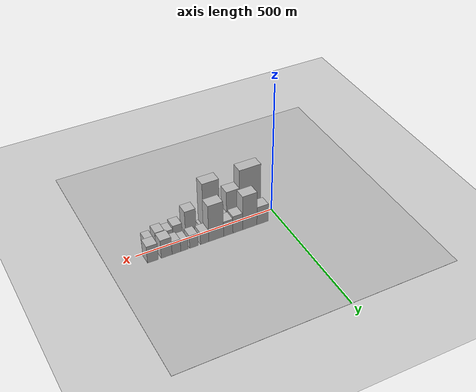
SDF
<?xml version="1.0" encoding="utf-8"?>

<sdf version="1.6">

   <world name="default">

      <gui fullscreen="0">

         <camera name="user_camera">

            <pose>-15 0 4.57585 0 0 0</pose>

            <view_controller>orbit</view_controller>

         </camera>

      </gui>

      <scene>

         <sky>

           <clouds>

             <speed>12</speed>

           </clouds>

         </sky>

         <ambient>0.4 0.4 0.4 1</ambient>

         <background>0.7 0.7 0.7 1</background>

         <shadows>1</shadows>

      </scene>

      <gravity>0 0 -9.8066</gravity>

      <magnetic_field>6e-06 2.3e-05 -4.2e-05</magnetic_field>

      <physics default="0" name="default_physics" type="ode">

         <ode>

            <solver>

               <type>quick</type>

               <iters>10</iters>

               <sor>1.0</sor>

               <use_dynamic_moi_rescaling>0</use_dynamic_moi_rescaling>

            </solver>

            <constraints>

               <cfm>0</cfm>

               <erp>0.2</erp>

               <contact_max_correcting_vel>100</contact_max_correcting_vel>

               <contact_surface_layer>0.001</contact_surface_layer>

            </constraints>

         </ode>

         <max_step_size>0.004</max_step_size>

         <real_time_factor>1</real_time_factor>

         <real_time_update_rate>250</real_time_update_rate>

      </physics>

      <light name="sun" type="directional">

         <cast_shadows>1</cast_shadows>

         <pose>0 0 10 0 0 0</pose>

         <diffuse>0.8 0.8 0.8 1</diffuse>

         <specular>0.2 0.2 0.2 1</specular>

         <attenuation>

            <range>1000</range>

            <constant>0.9</constant>

            <linear>0.01</linear>

            <quadratic>0.001</quadratic>

         </attenuation>

         <direction>-0.5 0.1 -0.9</direction>

      </light>

      <include>

         <name>ground_plane_1</name>

         <uri>model://HANNAS_ground_plane</uri>

         <pose>0 0 0  0 0 0</pose>

      </include>

      <include>

         <name>ground_plane_2</name>

         <uri>model://HANNAS_ground_plane</uri>

         <pose>100 0 0  0 0 0</pose>

      </include>

      <model name="building_1">

         <static>1</static>

         <pose frame="">61.5399 27.5000 0 0.000000 0.000000 1.570796</pose>

         <link name="link">

            <pose frame="">0 0 37.50 0 0 0</pose>

            <collision name="collision">

               <geometry>

                  <box>

                     <size>40.0000 43.0799 75.0000</size>

                  </box>

               </geometry>

               <max_contacts>10</max_contacts>

               <surface>

                  <contact>

                     <ode/>

                  </contact>

                  <bounce/>

                  <friction>

                     <torsional>

                        <ode/>

                     </torsional>

                     <ode/>

                  </friction>

               </surface>

            </collision>

            <visual name="visual">

               <cast_shadows>0</cast_shadows>

               <geometry>

                  <box>

                     <size>40.0000 43.0799 75.0000</size>

                  </box>

               </geometry>

               <material>

                  <script>

                     <uri>model://HANNAS_wall/materials/scripts</uri>

                     <uri>model://HANNAS_wall/materials/textures</uri>

                     <name>vrc/HANNAS_wall</name>

                  </script>

               </material>

            </visual>

            <self_collide>0</self_collide>

            <enable_wind>0</enable_wind>

            <kinematic>0</kinematic>

         </link>

      </model>

      <model name="building_2">

         <static>1</static>

         <pose frame="">110.0550 27.5000 0 0.000000 0.000000 1.570796</pose>

         <link name="link">

            <pose frame="">0 0 70.50 0 0 0</pose>

            <collision name="collision">

               <geometry>

                  <box>

                     <size>40.0000 53.9503 141.0000</size>

                  </box>

               </geometry>

               <max_contacts>10</max_contacts>

               <surface>

                  <contact>

                     <ode/>

                  </contact>

                  <bounce/>

                  <friction>

                     <torsional>

                        <ode/>

                     </torsional>

                     <ode/>

                  </friction>

               </surface>

            </collision>

            <visual name="visual">

               <cast_shadows>0</cast_shadows>

               <geometry>

                  <box>

                     <size>40.0000 53.9503 141.0000</size>

                  </box>

               </geometry>

               <material>

                  <script>

                     <uri>model://HANNAS_wall/materials/scripts</uri>

                     <uri>model://HANNAS_wall/materials/textures</uri>

                     <name>vrc/HANNAS_wall</name>

                  </script>

               </material>

            </visual>

            <self_collide>0</self_collide>

            <enable_wind>0</enable_wind>

            <kinematic>0</kinematic>

         </link>

      </model>

      <model name="building_3">

         <static>1</static>

         <pose frame="">155.0801 27.5000 0 0.000000 0.000000 1.570796</pose>

         <link name="link">

            <pose frame="">0 0 36.00 0 0 0</pose>

            <collision name="collision">

               <geometry>

                  <box>

                     <size>40.0000 36.0998 72.0000</size>

                  </box>

               </geometry>

               <max_contacts>10</max_contacts>

               <surface>

                  <contact>

                     <ode/>

                  </contact>

                  <bounce/>

                  <friction>

                     <torsional>

                        <ode/>

                     </torsional>

                     <ode/>

                  </friction>

               </surface>

            </collision>

            <visual name="visual">

               <cast_shadows>0</cast_shadows>

               <geometry>

                  <box>

                     <size>40.0000 36.0998 72.0000</size>

                  </box>

               </geometry>

               <material>

                  <script>

                     <uri>model://HANNAS_wall/materials/scripts</uri>

                     <uri>model://HANNAS_wall/materials/textures</uri>

                     <name>vrc/HANNAS_wall</name>

                  </script>

               </material>

            </visual>

            <self_collide>0</self_collide>

            <enable_wind>0</enable_wind>

            <kinematic>0</kinematic>

         </link>

      </model>

      <model name="building_4">

         <static>1</static>

         <pose frame="">190.4187 27.5000 0 0.000000 0.000000 1.570796</pose>

         <link name="link">

            <pose frame="">0 0 31.50 0 0 0</pose>

            <collision name="collision">

               <geometry>

                  <box>

                     <size>40.0000 34.5774 63.0000</size>

                  </box>

               </geometry>

               <max_contacts>10</max_contacts>

               <surface>

                  <contact>

                     <ode/>

                  </contact>

                  <bounce/>

                  <friction>

                     <torsional>

                        <ode/>

                     </torsional>

                     <ode/>

                  </friction>

               </surface>

            </collision>

            <visual name="visual">

               <cast_shadows>0</cast_shadows>

               <geometry>

                  <box>

                     <size>40.0000 34.5774 63.0000</size>

                  </box>

               </geometry>

               <material>

                  <script>

                     <uri>model://HANNAS_wall/materials/scripts</uri>

                     <uri>model://HANNAS_wall/materials/textures</uri>

                     <name>vrc/HANNAS_wall</name>

                  </script>

               </material>

            </visual>

            <self_collide>0</self_collide>

            <enable_wind>0</enable_wind>

            <kinematic>0</kinematic>

         </link>

      </model>

      <model name="building_5">

         <static>1</static>

         <pose frame="">234.9427 27.5000 0 0.000000 0.000000 1.570796</pose>

         <link name="link">

            <pose frame="">0 0 75.00 0 0 0</pose>

            <collision name="collision">

               <geometry>

                  <box>

                     <size>40.0000 54.4706 150.0000</size>

                  </box>

               </geometry>

               <max_contacts>10</max_contacts>

               <surface>

                  <contact>

                     <ode/>

                  </contact>

                  <bounce/>

                  <friction>

                     <torsional>

                        <ode/>

                     </torsional>

                     <ode/>

                  </friction>

               </surface>

            </collision>

            <visual name="visual">

               <cast_shadows>0</cast_shadows>

               <geometry>

                  <box>

                     <size>40.0000 54.4706 150.0000</size>

                  </box>

               </geometry>

               <material>

                  <script>

                     <uri>model://HANNAS_wall/materials/scripts</uri>

                     <uri>model://HANNAS_wall/materials/textures</uri>

                     <name>vrc/HANNAS_wall</name>

                  </script>

               </material>

            </visual>

            <self_collide>0</self_collide>

            <enable_wind>0</enable_wind>

            <kinematic>0</kinematic>

         </link>

      </model>

      <model name="building_6">

         <static>1</static>

         <pose frame="">277.0516 27.5000 0 0.000000 0.000000 1.570796</pose>

         <link name="link">

            <pose frame="">0 0 25.50 0 0 0</pose>

            <collision name="collision">

               <geometry>

                  <box>

                     <size>40.0000 29.7472 51.0000</size>

                  </box>

               </geometry>

               <max_contacts>10</max_contacts>

               <surface>

                  <contact>

                     <ode/>

                  </contact>

                  <bounce/>

                  <friction>

                     <torsional>

                        <ode/>

                     </torsional>

                     <ode/>

                  </friction>

               </surface>

            </collision>

            <visual name="visual">

               <cast_shadows>0</cast_shadows>

               <geometry>

                  <box>

                     <size>40.0000 29.7472 51.0000</size>

                  </box>

               </geometry>

               <material>

                  <script>

                     <uri>model://HANNAS_wall/materials/scripts</uri>

                     <uri>model://HANNAS_wall/materials/textures</uri>

                     <name>vrc/HANNAS_wall</name>

                  </script>

               </material>

            </visual>

            <self_collide>0</self_collide>

            <enable_wind>0</enable_wind>

            <kinematic>0</kinematic>

         </link>

      </model>

      <model name="building_7">

         <static>1</static>

         <pose frame="">315.9096 27.5000 0 0.000000 0.000000 1.570796</pose>

         <link name="link">

            <pose frame="">0 0 27.00 0 0 0</pose>

            <collision name="collision">

               <geometry>

                  <box>

                     <size>40.0000 29.9689 54.0000</size>

                  </box>

               </geometry>

               <max_contacts>10</max_contacts>

               <surface>

                  <contact>

                     <ode/>

                  </contact>

                  <bounce/>

                  <friction>

                     <torsional>

                        <ode/>

                     </torsional>

                     <ode/>

                  </friction>

               </surface>

            </collision>

            <visual name="visual">

               <cast_shadows>0</cast_shadows>

               <geometry>

                  <box>

                     <size>40.0000 29.9689 54.0000</size>

                  </box>

               </geometry>

               <material>

                  <script>

                     <uri>model://HANNAS_wall/materials/scripts</uri>

                     <uri>model://HANNAS_wall/materials/textures</uri>

                     <name>vrc/HANNAS_wall</name>

                  </script>

               </material>

            </visual>

            <self_collide>0</self_collide>

            <enable_wind>0</enable_wind>

            <kinematic>0</kinematic>

         </link>

      </model>

      <model name="building_8">

         <static>1</static>

         <pose frame="">349.7772 27.5000 0 0.000000 0.000000 1.570796</pose>

         <link name="link">

            <pose frame="">0 0 24.00 0 0 0</pose>

            <collision name="collision">

               <geometry>

                  <box>

                     <size>40.0000 25.7662 48.0000</size>

                  </box>

               </geometry>

               <max_contacts>10</max_contacts>

               <surface>

                  <contact>

                     <ode/>

                  </contact>

                  <bounce/>

                  <friction>

                     <torsional>

                        <ode/>

                     </torsional>

                     <ode/>

                  </friction>

               </surface>

            </collision>

            <visual name="visual">

               <cast_shadows>0</cast_shadows>

               <geometry>

                  <box>

                     <size>40.0000 25.7662 48.0000</size>

                  </box>

               </geometry>

               <material>

                  <script>

                     <uri>model://HANNAS_wall/materials/scripts</uri>

                     <uri>model://HANNAS_wall/materials/textures</uri>

                     <name>vrc/HANNAS_wall</name>

                  </script>

               </material>

            </visual>

            <self_collide>0</self_collide>

            <enable_wind>0</enable_wind>

            <kinematic>0</kinematic>

         </link>

      </model>

      <model name="building_9">

         <static>1</static>

         <pose frame="">377.9914 27.5000 0 0.000000 0.000000 1.570796</pose>

         <link name="link">

            <pose frame="">0 0 27.00 0 0 0</pose>

            <collision name="collision">

               <geometry>

                  <box>

                     <size>40.0000 30.6622 54.0000</size>

                  </box>

               </geometry>

               <max_contacts>10</max_contacts>

               <surface>

                  <contact>

                     <ode/>

                  </contact>

                  <bounce/>

                  <friction>

                     <torsional>

                        <ode/>

                     </torsional>

                     <ode/>

                  </friction>

               </surface>

            </collision>

            <visual name="visual">

               <cast_shadows>0</cast_shadows>

               <geometry>

                  <box>

                     <size>40.0000 30.6622 54.0000</size>

                  </box>

               </geometry>

               <material>

                  <script>

                     <uri>model://HANNAS_wall/materials/scripts</uri>

                     <uri>model://HANNAS_wall/materials/textures</uri>

                     <name>vrc/HANNAS_wall</name>

                  </script>

               </material>

            </visual>

            <self_collide>0</self_collide>

            <enable_wind>0</enable_wind>

            <kinematic>0</kinematic>

         </link>

      </model>

      <model name="building_10">

         <static>1</static>

         <pose frame="">412.3694 27.5000 0 0.000000 0.000000 1.570796</pose>

         <link name="link">

            <pose frame="">0 0 37.50 0 0 0</pose>

            <collision name="collision">

               <geometry>

                  <box>

                     <size>40.0000 38.0938 75.0000</size>

                  </box>

               </geometry>

               <max_contacts>10</max_contacts>

               <surface>

                  <contact>

                     <ode/>

                  </contact>

                  <bounce/>

                  <friction>

                     <torsional>

                        <ode/>

                     </torsional>

                     <ode/>

                  </friction>

               </surface>

            </collision>

            <visual name="visual">

               <cast_shadows>0</cast_shadows>

               <geometry>

                  <box>

                     <size>40.0000 38.0938 75.0000</size>

                  </box>

               </geometry>

               <material>

                  <script>

                     <uri>model://HANNAS_wall/materials/scripts</uri>

                     <uri>model://HANNAS_wall/materials/textures</uri>

                     <name>vrc/HANNAS_wall</name>

                  </script>

               </material>

            </visual>

            <self_collide>0</self_collide>

            <enable_wind>0</enable_wind>

            <kinematic>0</kinematic>

         </link>

      </model>

      <model name="building_11">

         <static>1</static>

         <pose frame="">460.2208 27.5000 0 0.000000 0.000000 1.570796</pose>

         <link name="link">

            <pose frame="">0 0 34.50 0 0 0</pose>

            <collision name="collision">

               <geometry>

                  <box>

                     <size>40.0000 37.6091 69.0000</size>

                  </box>

               </geometry>

               <max_contacts>10</max_contacts>

               <surface>

                  <contact>

                     <ode/>

                  </contact>

                  <bounce/>

                  <friction>

                     <torsional>

                        <ode/>

                     </torsional>

                     <ode/>

                  </friction>

               </surface>

            </collision>

            <visual name="visual">

               <cast_shadows>0</cast_shadows>

               <geometry>

                  <box>

                     <size>40.0000 37.6091 69.0000</size>

                  </box>

               </geometry>

               <material>

                  <script>

                     <uri>model://HANNAS_wall/materials/scripts</uri>

                     <uri>model://HANNAS_wall/materials/textures</uri>

                     <name>vrc/HANNAS_wall</name>

                  </script>

               </material>

            </visual>

            <self_collide>0</self_collide>

            <enable_wind>0</enable_wind>

            <kinematic>0</kinematic>

         </link>

      </model>

      <model name="building_12">

         <static>1</static>

         <pose frame="">79.8585 -27.5000 0 0.000000 0.000000 1.570796</pose>

         <link name="link">

            <pose frame="">0 0 102.00 0 0 0</pose>

            <collision name="collision">

               <geometry>

                  <box>

                     <size>40.0000 79.7170 204.0000</size>

                  </box>

               </geometry>

               <max_contacts>10</max_contacts>

               <surface>

                  <contact>

                     <ode/>

                  </contact>

                  <bounce/>

                  <friction>

                     <torsional>

                        <ode/>

                     </torsional>

                     <ode/>

                  </friction>

               </surface>

            </collision>

            <visual name="visual">

               <cast_shadows>0</cast_shadows>

               <geometry>

                  <box>

                     <size>40.0000 79.7170 204.0000</size>

                  </box>

               </geometry>

               <material>

                  <script>

                     <uri>model://HANNAS_wall/materials/scripts</uri>

                     <uri>model://HANNAS_wall/materials/textures</uri>

                     <name>vrc/HANNAS_wall</name>

                  </script>

               </material>

            </visual>

            <self_collide>0</self_collide>

            <enable_wind>0</enable_wind>

            <kinematic>0</kinematic>

         </link>

      </model>

      <model name="building_13">

         <static>1</static>

         <pose frame="">143.9218 -27.5000 0 0.000000 0.000000 1.570796</pose>

         <link name="link">

            <pose frame="">0 0 66.00 0 0 0</pose>

            <collision name="collision">

               <geometry>

                  <box>

                     <size>40.0000 48.4096 132.0000</size>

                  </box>

               </geometry>

               <max_contacts>10</max_contacts>

               <surface>

                  <contact>

                     <ode/>

                  </contact>

                  <bounce/>

                  <friction>

                     <torsional>

                        <ode/>

                     </torsional>

                     <ode/>

                  </friction>

               </surface>

            </collision>

            <visual name="visual">

               <cast_shadows>0</cast_shadows>

               <geometry>

                  <box>

                     <size>40.0000 48.4096 132.0000</size>

                  </box>

               </geometry>

               <material>

                  <script>

                     <uri>model://HANNAS_wall/materials/scripts</uri>

                     <uri>model://HANNAS_wall/materials/textures</uri>

                     <name>vrc/HANNAS_wall</name>

                  </script>

               </material>

            </visual>

            <self_collide>0</self_collide>

            <enable_wind>0</enable_wind>

            <kinematic>0</kinematic>

         </link>

      </model>

      <model name="building_14">

         <static>1</static>

         <pose frame="">181.0359 -27.5000 0 0.000000 0.000000 1.570796</pose>

         <link name="link">

            <pose frame="">0 0 24.00 0 0 0</pose>

            <collision name="collision">

               <geometry>

                  <box>

                     <size>40.0000 25.8187 48.0000</size>

                  </box>

               </geometry>

               <max_contacts>10</max_contacts>

               <surface>

                  <contact>

                     <ode/>

                  </contact>

                  <bounce/>

                  <friction>

                     <torsional>

                        <ode/>

                     </torsional>

                     <ode/>

                  </friction>

               </surface>

            </collision>

            <visual name="visual">

               <cast_shadows>0</cast_shadows>

               <geometry>

                  <box>

                     <size>40.0000 25.8187 48.0000</size>

                  </box>

               </geometry>

               <material>

                  <script>

                     <uri>model://HANNAS_wall/materials/scripts</uri>

                     <uri>model://HANNAS_wall/materials/textures</uri>

                     <name>vrc/HANNAS_wall</name>

                  </script>

               </material>

            </visual>

            <self_collide>0</self_collide>

            <enable_wind>0</enable_wind>

            <kinematic>0</kinematic>

         </link>

      </model>

      <model name="building_15">

         <static>1</static>

         <pose frame="">224.1226 -27.5000 0 0.000000 0.000000 1.570796</pose>

         <link name="link">

            <pose frame="">0 0 99.00 0 0 0</pose>

            <collision name="collision">

               <geometry>

                  <box>

                     <size>40.0000 60.3546 198.0000</size>

                  </box>

               </geometry>

               <max_contacts>10</max_contacts>

               <surface>

                  <contact>

                     <ode/>

                  </contact>

                  <bounce/>

                  <friction>

                     <torsional>

                        <ode/>

                     </torsional>

                     <ode/>

                  </friction>

               </surface>

            </collision>

            <visual name="visual">

               <cast_shadows>0</cast_shadows>

               <geometry>

                  <box>

                     <size>40.0000 60.3546 198.0000</size>

                  </box>

               </geometry>

               <material>

                  <script>

                     <uri>model://HANNAS_wall/materials/scripts</uri>

                     <uri>model://HANNAS_wall/materials/textures</uri>

                     <name>vrc/HANNAS_wall</name>

                  </script>

               </material>

            </visual>

            <self_collide>0</self_collide>

            <enable_wind>0</enable_wind>

            <kinematic>0</kinematic>

         </link>

      </model>

      <model name="building_16">

         <static>1</static>

         <pose frame="">259.5123 -27.5000 0 0.000000 0.000000 1.570796</pose>

         <link name="link">

            <pose frame="">0 0 10.50 0 0 0</pose>

            <collision name="collision">

               <geometry>

                  <box>

                     <size>40.0000 10.4248 21.0000</size>

                  </box>

               </geometry>

               <max_contacts>10</max_contacts>

               <surface>

                  <contact>

                     <ode/>

                  </contact>

                  <bounce/>

                  <friction>

                     <torsional>

                        <ode/>

                     </torsional>

                     <ode/>

                  </friction>

               </surface>

            </collision>

            <visual name="visual">

               <cast_shadows>0</cast_shadows>

               <geometry>

                  <box>

                     <size>40.0000 10.4248 21.0000</size>

                  </box>

               </geometry>

               <material>

                  <script>

                     <uri>model://HANNAS_wall/materials/scripts</uri>

                     <uri>model://HANNAS_wall/materials/textures</uri>

                     <name>vrc/HANNAS_wall</name>

                  </script>

               </material>

            </visual>

            <self_collide>0</self_collide>

            <enable_wind>0</enable_wind>

            <kinematic>0</kinematic>

         </link>

      </model>

      <model name="building_17">

         <static>1</static>

         <pose frame="">268.5631 -27.5000 0 0.000000 0.000000 1.570796</pose>

         <link name="link">

            <pose frame="">0 0 9.00 0 0 0</pose>

            <collision name="collision">

               <geometry>

                  <box>

                     <size>40.0000 7.6768 18.0000</size>

                  </box>

               </geometry>

               <max_contacts>10</max_contacts>

               <surface>

                  <contact>

                     <ode/>

                  </contact>

                  <bounce/>

                  <friction>

                     <torsional>

                        <ode/>

                     </torsional>

                     <ode/>

                  </friction>

               </surface>

            </collision>

            <visual name="visual">

               <cast_shadows>0</cast_shadows>

               <geometry>

                  <box>

                     <size>40.0000 7.6768 18.0000</size>

                  </box>

               </geometry>

               <material>

                  <script>

                     <uri>model://HANNAS_wall/materials/scripts</uri>

                     <uri>model://HANNAS_wall/materials/textures</uri>

                     <name>vrc/HANNAS_wall</name>

                  </script>

               </material>

            </visual>

            <self_collide>0</self_collide>

            <enable_wind>0</enable_wind>

            <kinematic>0</kinematic>

         </link>

      </model>

      <model name="building_18">

         <static>1</static>

         <pose frame="">300.1345 -27.5000 0 0.000000 0.000000 1.570796</pose>

         <link name="link">

            <pose frame="">0 0 54.00 0 0 0</pose>

            <collision name="collision">

               <geometry>

                  <box>

                     <size>40.0000 39.4659 108.0000</size>

                  </box>

               </geometry>

               <max_contacts>10</max_contacts>

               <surface>

                  <contact>

                     <ode/>

                  </contact>

                  <bounce/>

                  <friction>

                     <torsional>

                        <ode/>

                     </torsional>

                     <ode/>

                  </friction>

               </surface>

            </collision>

            <visual name="visual">

               <cast_shadows>0</cast_shadows>

               <geometry>

                  <box>

                     <size>40.0000 39.4659 108.0000</size>

                  </box>

               </geometry>

               <material>

                  <script>

                     <uri>model://HANNAS_wall/materials/scripts</uri>

                     <uri>model://HANNAS_wall/materials/textures</uri>

                     <name>vrc/HANNAS_wall</name>

                  </script>

               </material>

            </visual>

            <self_collide>0</self_collide>

            <enable_wind>0</enable_wind>

            <kinematic>0</kinematic>

         </link>

      </model>

      <model name="building_19">

         <static>1</static>

         <pose frame="">327.8817 -27.5000 0 0.000000 0.000000 1.570796</pose>

         <link name="link">

            <pose frame="">0 0 7.50 0 0 0</pose>

            <collision name="collision">

               <geometry>

                  <box>

                     <size>40.0000 6.0286 15.0000</size>

                  </box>

               </geometry>

               <max_contacts>10</max_contacts>

               <surface>

                  <contact>

                     <ode/>

                  </contact>

                  <bounce/>

                  <friction>

                     <torsional>

                        <ode/>

                     </torsional>

                     <ode/>

                  </friction>

               </surface>

            </collision>

            <visual name="visual">

               <cast_shadows>0</cast_shadows>

               <geometry>

                  <box>

                     <size>40.0000 6.0286 15.0000</size>

                  </box>

               </geometry>

               <material>

                  <script>

                     <uri>model://HANNAS_wall/materials/scripts</uri>

                     <uri>model://HANNAS_wall/materials/textures</uri>

                     <name>vrc/HANNAS_wall</name>

                  </script>

               </material>

            </visual>

            <self_collide>0</self_collide>

            <enable_wind>0</enable_wind>

            <kinematic>0</kinematic>

         </link>

      </model>

      <model name="building_20">

         <static>1</static>

         <pose frame="">347.4209 -27.5000 0 0.000000 0.000000 1.570796</pose>

         <link name="link">

            <pose frame="">0 0 33.00 0 0 0</pose>

            <collision name="collision">

               <geometry>

                  <box>

                     <size>40.0000 33.0497 66.0000</size>

                  </box>

               </geometry>

               <max_contacts>10</max_contacts>

               <surface>

                  <contact>

                     <ode/>

                  </contact>

                  <bounce/>

                  <friction>

                     <torsional>

                        <ode/>

                     </torsional>

                     <ode/>

                  </friction>

               </surface>

            </collision>

            <visual name="visual">

               <cast_shadows>0</cast_shadows>

               <geometry>

                  <box>

                     <size>40.0000 33.0497 66.0000</size>

                  </box>

               </geometry>

               <material>

                  <script>

                     <uri>model://HANNAS_wall/materials/scripts</uri>

                     <uri>model://HANNAS_wall/materials/textures</uri>

                     <name>vrc/HANNAS_wall</name>

                  </script>

               </material>

            </visual>

            <self_collide>0</self_collide>

            <enable_wind>0</enable_wind>

            <kinematic>0</kinematic>

         </link>

      </model>

      <model name="building_21">

         <static>1</static>

         <pose frame="">378.7289 -27.5000 0 0.000000 0.000000 1.570796</pose>

         <link name="link">

            <pose frame="">0 0 27.00 0 0 0</pose>

            <collision name="collision">

               <geometry>

                  <box>

                     <size>40.0000 29.5662 54.0000</size>

                  </box>

               </geometry>

               <max_contacts>10</max_contacts>

               <surface>

                  <contact>

                     <ode/>

                  </contact>

                  <bounce/>

                  <friction>

                     <torsional>

                        <ode/>

                     </torsional>

                     <ode/>

                  </friction>

               </surface>

            </collision>

            <visual name="visual">

               <cast_shadows>0</cast_shadows>

               <geometry>

                  <box>

                     <size>40.0000 29.5662 54.0000</size>

                  </box>

               </geometry>

               <material>

                  <script>

                     <uri>model://HANNAS_wall/materials/scripts</uri>

                     <uri>model://HANNAS_wall/materials/textures</uri>

                     <name>vrc/HANNAS_wall</name>

                  </script>

               </material>

            </visual>

            <self_collide>0</self_collide>

            <enable_wind>0</enable_wind>

            <kinematic>0</kinematic>

         </link>

      </model>

      <model name="building_22">

         <static>1</static>

         <pose frame="">409.9689 -27.5000 0 0.000000 0.000000 1.570796</pose>

         <link name="link">

            <pose frame="">0 0 31.50 0 0 0</pose>

            <collision name="collision">

               <geometry>

                  <box>

                     <size>40.0000 32.9138 63.0000</size>

                  </box>

               </geometry>

               <max_contacts>10</max_contacts>

               <surface>

                  <contact>

                     <ode/>

                  </contact>

                  <bounce/>

                  <friction>

                     <torsional>

                        <ode/>

                     </torsional>

                     <ode/>

                  </friction>

               </surface>

            </collision>

            <visual name="visual">

               <cast_shadows>0</cast_shadows>

               <geometry>

                  <box>

                     <size>40.0000 32.9138 63.0000</size>

                  </box>

               </geometry>

               <material>

                  <script>

                     <uri>model://HANNAS_wall/materials/scripts</uri>

                     <uri>model://HANNAS_wall/materials/textures</uri>

                     <name>vrc/HANNAS_wall</name>

                  </script>

               </material>

            </visual>

            <self_collide>0</self_collide>

            <enable_wind>0</enable_wind>

            <kinematic>0</kinematic>

         </link>

      </model>

      <model name="building_23">

         <static>1</static>

         <pose frame="">446.7760 -27.5000 0 0.000000 0.000000 1.570796</pose>

         <link name="link">

            <pose frame="">0 0 24.00 0 0 0</pose>

            <collision name="collision">

               <geometry>

                  <box>

                     <size>40.0000 28.7004 48.0000</size>

                  </box>

               </geometry>

               <max_contacts>10</max_contacts>

               <surface>

                  <contact>

                     <ode/>

                  </contact>

                  <bounce/>

                  <friction>

                     <torsional>

                        <ode/>

                     </torsional>

                     <ode/>

                  </friction>

               </surface>

            </collision>

            <visual name="visual">

               <cast_shadows>0</cast_shadows>

               <geometry>

                  <box>

                     <size>40.0000 28.7004 48.0000</size>

                  </box>

               </geometry>

               <material>

                  <script>

                     <uri>model://HANNAS_wall/materials/scripts</uri>

                     <uri>model://HANNAS_wall/materials/textures</uri>

                     <name>vrc/HANNAS_wall</name>

                  </script>

               </material>

            </visual>

            <self_collide>0</self_collide>

            <enable_wind>0</enable_wind>

            <kinematic>0</kinematic>

         </link>

      </model>

   </world>

</sdf>

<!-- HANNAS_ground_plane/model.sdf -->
<sdf version="1.4">
<model name="HANNAS_ground_plane">
  <static>true</static>
    <link name="link">
      <collision name="collision">
        <geometry>
          <plane>
            <normal>0 0 1</normal>
            <size>1000 1000</size>
          </plane>
        </geometry>
        <surface>
          <friction>
            <ode>
              <mu>100</mu>
              <mu2>50</mu2>
            </ode>
          </friction>
        </surface>
      </collision>
      <visual name="visual">
        <cast_shadows>false</cast_shadows>
        <geometry>
          <plane>
            <normal>0 0 1</normal>
            <size>1000 1000</size>
          </plane>
        </geometry>
        <material>
          <script>
            <uri>model://HANNAS_ground_plane/materials/scripts/HANNAS_ground_plane.material</uri>
	    <uri>model://HANNAS_ground_plane/materials/textures</uri>
            <name>HANNASGroundPlane/Image</name>
          </script>
        </material>
      </visual>
    </link>
  </model>
</sdf>
